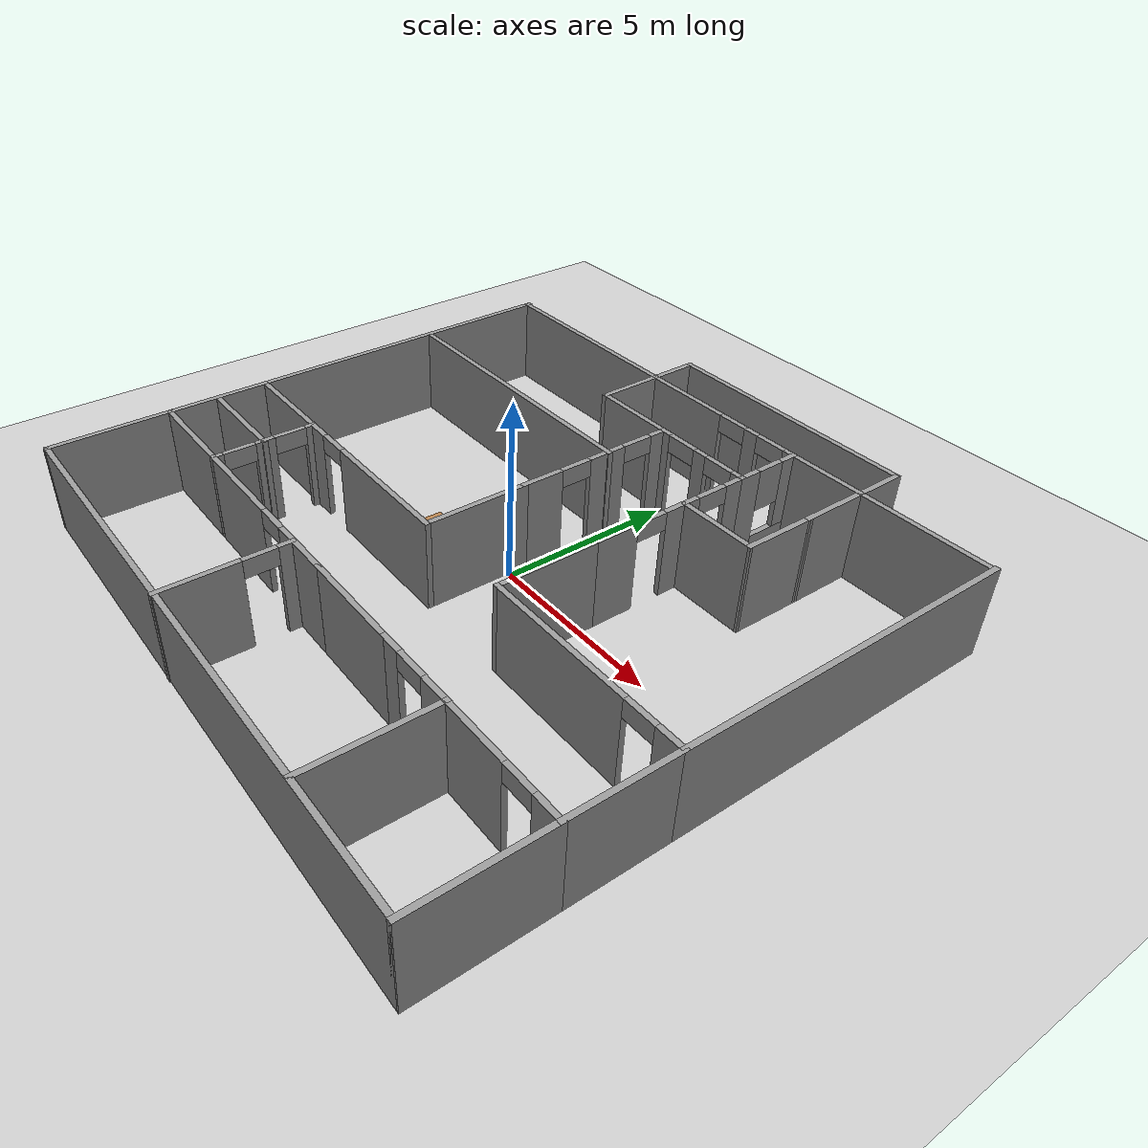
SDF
<sdf version="1.7">
 <world name="default">
  <model name="ground_plane">
   <static>1</static>
   <link name="link">
    <collision name="collision">
     <geometry><plane><normal>0 0 1</normal><size>100 100</size></plane></geometry>
     <surface><friction><ode><mu>100</mu><mu2>50</mu2></ode></friction></surface>
    </collision>
    <visual name="visual">
     <cast_shadows>0</cast_shadows>
     <geometry><plane><normal>0 0 1</normal><size>100 100</size></plane></geometry>
     <material>
      <script><uri>file://media/materials/scripts/gazebo.material</uri><name>Gazebo/Grey</name></script>
     </material>
    </visual>
   </link>
  </model>
  <model name="office">
   <pose>-0.02839 -0.13951 0 0 -0 0</pose>
   <link name="Wall_100">
    <collision name="Wall_100_Collision">
     <geometry><box><size>3 0.15 2.5</size></box></geometry>
     <pose>0 0 1.25 0 -0 0</pose>
    </collision>
    <visual name="Wall_100_Visual">
     <pose>0 0 1.25 0 -0 0</pose>
     <geometry><box><size>3 0.15 2.5</size></box></geometry>
     <material>
      <script><uri>file://media/materials/scripts/gazebo.material</uri><name>Gazebo/Grey</name></script>
      <ambient>1 1 1 1</ambient>
     </material>
     <meta><layer>0</layer></meta>
    </visual>
    <pose>-7.10827 -3.66762 0 0 -0 3.14159</pose>
   </link>
   <link name="Wall_11">
    <pose>2.725 2.93539 0 0 -0 1.5708</pose>
    <visual name="Wall_11_Visual_0">
     <pose>-1.77172 0 1.25 0 -0 0</pose>
     <geometry><box><size>1.20655 0.15 2.5</size></box></geometry>
     <material>
      <script><uri>file://media/materials/scripts/gazebo.material</uri><name>Gazebo/Grey</name></script>
      <ambient>1 1 1 1</ambient>
     </material>
     <meta><layer>0</layer></meta>
    </visual>
    <collision name="Wall_11_Collision_0">
     <geometry><box><size>1.20655 0.15 2.5</size></box></geometry>
     <pose>-1.77172 0 1.25 0 -0 0</pose>
    </collision>
    <visual name="Wall_11_Visual_1">
     <pose>0.268144 0 1.25 0 -0 0</pose>
     <geometry><box><size>1.07319 0.15 2.5</size></box></geometry>
     <material>
      <script><uri>file://media/materials/scripts/gazebo.material</uri><name>Gazebo/Grey</name></script>
      <ambient>1 1 1 1</ambient>
     </material>
     <meta><layer>0</layer></meta>
    </visual>
    <collision name="Wall_11_Collision_1">
     <geometry><box><size>1.07319 0.15 2.5</size></box></geometry>
     <pose>0.268144 0 1.25 0 -0 0</pose>
    </collision>
    <visual name="Wall_11_Visual_2">
     <pose>2.03987 0 1.25 0 -0 0</pose>
     <geometry><box><size>0.670261 0.15 2.5</size></box></geometry>
     <material>
      <script><uri>file://media/materials/scripts/gazebo.material</uri><name>Gazebo/Grey</name></script>
      <ambient>1 1 1 1</ambient>
     </material>
     <meta><layer>0</layer></meta>
    </visual>
    <collision name="Wall_11_Collision_2">
     <geometry><box><size>0.670261 0.15 2.5</size></box></geometry>
     <pose>2.03987 0 1.25 0 -0 0</pose>
    </collision>
    <visual name="Wall_11_Visual_3">
     <pose>-0.71845 0 2.25 0 -0 0</pose>
     <geometry><box><size>0.9 0.15 0.5</size></box></geometry>
     <material>
      <script><uri>file://media/materials/scripts/gazebo.material</uri><name>Gazebo/Grey</name></script>
      <ambient>1 1 1 1</ambient>
     </material>
     <meta><layer>0</layer></meta>
    </visual>
    <collision name="Wall_11_Collision_3">
     <geometry><box><size>0.9 0.15 0.5</size></box></geometry>
     <pose>-0.71845 0 2.25 0 -0 0</pose>
    </collision>
    <visual name="Wall_11_Visual_4">
     <pose>1.25474 0 2.25 0 -0 0</pose>
     <geometry><box><size>0.9 0.15 0.5</size></box></geometry>
     <material>
      <script><uri>file://media/materials/scripts/gazebo.material</uri><name>Gazebo/Grey</name></script>
      <ambient>1 1 1 1</ambient>
     </material>
     <meta><layer>0</layer></meta>
    </visual>
    <collision name="Wall_11_Collision_4">
     <geometry><box><size>0.9 0.15 0.5</size></box></geometry>
     <pose>1.25474 0 2.25 0 -0 0</pose>
    </collision>
   </link>
   <link name="Wall_12">
    <pose>1.3 5.23539 0 0 -0 3.14159</pose>
    <visual name="Wall_12_Visual_0">
     <pose>-1.3013 0 1.25 0 -0 0</pose>
     <geometry><box><size>0.397395 0.15 2.5</size></box></geometry>
     <material>
      <script><uri>file://media/materials/scripts/gazebo.material</uri><name>Gazebo/Grey</name></script>
      <ambient>1 1 1 1</ambient>
     </material>
     <meta><layer>0</layer></meta>
    </visual>
    <collision name="Wall_12_Collision_0">
     <geometry><box><size>0.397395 0.15 2.5</size></box></geometry>
     <pose>-1.3013 0 1.25 0 -0 0</pose>
    </collision>
    <visual name="Wall_12_Visual_1">
     <pose>0.006617 0 1.25 0 -0 0</pose>
     <geometry><box><size>0.418445 0.15 2.5</size></box></geometry>
     <material>
      <script><uri>file://media/materials/scripts/gazebo.material</uri><name>Gazebo/Grey</name></script>
      <ambient>1 1 1 1</ambient>
     </material>
     <meta><layer>0</layer></meta>
    </visual>
    <collision name="Wall_12_Collision_1">
     <geometry><box><size>0.418445 0.15 2.5</size></box></geometry>
     <pose>0.006617 0 1.25 0 -0 0</pose>
    </collision>
    <visual name="Wall_12_Visual_2">
     <pose>1.30792 0 1.25 0 -0 0</pose>
     <geometry><box><size>0.384161 0.15 2.5</size></box></geometry>
     <material>
      <script><uri>file://media/materials/scripts/gazebo.material</uri><name>Gazebo/Grey</name></script>
      <ambient>1 1 1 1</ambient>
     </material>
     <meta><layer>0</layer></meta>
    </visual>
    <collision name="Wall_12_Collision_2">
     <geometry><box><size>0.384161 0.15 2.5</size></box></geometry>
     <pose>1.30792 0 1.25 0 -0 0</pose>
    </collision>
    <visual name="Wall_12_Visual_3">
     <pose>-0.652605 0 2.25 0 -0 0</pose>
     <geometry><box><size>0.9 0.15 0.5</size></box></geometry>
     <material>
      <script><uri>file://media/materials/scripts/gazebo.material</uri><name>Gazebo/Grey</name></script>
      <ambient>1 1 1 1</ambient>
     </material>
     <meta><layer>0</layer></meta>
    </visual>
    <collision name="Wall_12_Collision_3">
     <geometry><box><size>0.9 0.15 0.5</size></box></geometry>
     <pose>-0.652605 0 2.25 0 -0 0</pose>
    </collision>
    <visual name="Wall_12_Visual_4">
     <pose>0.665839 0 2.25 0 -0 0</pose>
     <geometry><box><size>0.9 0.15 0.5</size></box></geometry>
     <material>
      <script><uri>file://media/materials/scripts/gazebo.material</uri><name>Gazebo/Grey</name></script>
      <ambient>1 1 1 1</ambient>
     </material>
     <meta><layer>0</layer></meta>
    </visual>
    <collision name="Wall_12_Collision_4">
     <geometry><box><size>0.9 0.15 0.5</size></box></geometry>
     <pose>0.665839 0 2.25 0 -0 0</pose>
    </collision>
   </link>
   <link name="Wall_13">
    <pose>-0.125 2.93539 0 0 -0 -1.5708</pose>
    <visual name="Wall_13_Visual_0">
     <pose>-2.08548 0 1.25 0 -0 0</pose>
     <geometry><box><size>0.579043 0.15 2.5</size></box></geometry>
     <material>
      <script><uri>file://media/materials/scripts/gazebo.material</uri><name>Gazebo/Grey</name></script>
      <ambient>1 1 1 1</ambient>
     </material>
     <meta><layer>0</layer></meta>
    </visual>
    <collision name="Wall_13_Collision_0">
     <geometry><box><size>0.579043 0.15 2.5</size></box></geometry>
     <pose>-2.08548 0 1.25 0 -0 0</pose>
    </collision>
    <visual name="Wall_13_Visual_1">
     <pose>-0.329311 0 1.25 0 -0 0</pose>
     <geometry><box><size>1.13329 0.15 2.5</size></box></geometry>
     <material>
      <script><uri>file://media/materials/scripts/gazebo.material</uri><name>Gazebo/Grey</name></script>
      <ambient>1 1 1 1</ambient>
     </material>
     <meta><layer>0</layer></meta>
    </visual>
    <collision name="Wall_13_Collision_1">
     <geometry><box><size>1.13329 0.15 2.5</size></box></geometry>
     <pose>-0.329311 0 1.25 0 -0 0</pose>
    </collision>
    <visual name="Wall_13_Visual_2">
     <pose>1.75617 0 1.25 0 -0 0</pose>
     <geometry><box><size>1.23766 0.15 2.5</size></box></geometry>
     <material>
      <script><uri>file://media/materials/scripts/gazebo.material</uri><name>Gazebo/Grey</name></script>
      <ambient>1 1 1 1</ambient>
     </material>
     <meta><layer>0</layer></meta>
    </visual>
    <collision name="Wall_13_Collision_2">
     <geometry><box><size>1.23766 0.15 2.5</size></box></geometry>
     <pose>1.75617 0 1.25 0 -0 0</pose>
    </collision>
    <visual name="Wall_13_Visual_3">
     <pose>-1.34596 0 2.25 0 -0 0</pose>
     <geometry><box><size>0.9 0.15 0.5</size></box></geometry>
     <material>
      <script><uri>file://media/materials/scripts/gazebo.material</uri><name>Gazebo/Grey</name></script>
      <ambient>1 1 1 1</ambient>
     </material>
     <meta><layer>0</layer></meta>
    </visual>
    <collision name="Wall_13_Collision_3">
     <geometry><box><size>0.9 0.15 0.5</size></box></geometry>
     <pose>-1.34596 0 2.25 0 -0 0</pose>
    </collision>
    <visual name="Wall_13_Visual_4">
     <pose>0.687336 0 2.25 0 -0 0</pose>
     <geometry><box><size>0.9 0.15 0.5</size></box></geometry>
     <material>
      <script><uri>file://media/materials/scripts/gazebo.material</uri><name>Gazebo/Grey</name></script>
      <ambient>1 1 1 1</ambient>
     </material>
     <meta><layer>0</layer></meta>
    </visual>
    <collision name="Wall_13_Collision_4">
     <geometry><box><size>0.9 0.15 0.5</size></box></geometry>
     <pose>0.687336 0 2.25 0 -0 0</pose>
    </collision>
   </link>
   <link name="Wall_15">
    <collision name="Wall_15_Collision">
     <geometry><box><size>2.5 0.15 2.5</size></box></geometry>
     <pose>0 0 1.25 0 -0 0</pose>
    </collision>
    <visual name="Wall_15_Visual">
     <pose>0 0 1.25 0 -0 0</pose>
     <geometry><box><size>2.5 0.15 2.5</size></box></geometry>
     <material>
      <script><uri>file://media/materials/scripts/gazebo.material</uri><name>Gazebo/Grey</name></script>
      <ambient>1 1 1 1</ambient>
     </material>
     <meta><layer>0</layer></meta>
    </visual>
    <pose>-1.3 5.23539 0 0 -0 3.14159</pose>
   </link>
   <link name="Wall_25">
    <collision name="Wall_25_Collision">
     <geometry><box><size>2 0.15 2.5</size></box></geometry>
     <pose>0 0 1.25 0 -0 0</pose>
    </collision>
    <visual name="Wall_25_Visual">
     <pose>0 0 1.25 0 -0 0</pose>
     <geometry><box><size>2 0.15 2.5</size></box></geometry>
     <material>
      <script><uri>file://media/materials/scripts/gazebo.material</uri><name>Gazebo/Grey</name></script>
      <ambient>1 1 1 1</ambient>
     </material>
     <meta><layer>0</layer></meta>
    </visual>
    <pose>-2.475 6.16039 0 0 -0 1.5708</pose>
   </link>
   <link name="Wall_26">
    <pose>1.2 7.08539 0 0 -0 0</pose>
    <visual name="Wall_26_Visual_0">
     <pose>-2.38462 0 1.25 0 -0 0</pose>
     <geometry><box><size>2.73077 0.15 2.5</size></box></geometry>
     <material>
      <script><uri>file://media/materials/scripts/gazebo.material</uri><name>Gazebo/Grey</name></script>
      <ambient>1 1 1 1</ambient>
     </material>
     <meta><layer>0</layer></meta>
    </visual>
    <collision name="Wall_26_Collision_0">
     <geometry><box><size>2.73077 0.15 2.5</size></box></geometry>
     <pose>-2.38462 0 1.25 0 -0 0</pose>
    </collision>
    <visual name="Wall_26_Visual_1">
     <pose>0.103755 0 1.25 0 -0 0</pose>
     <geometry><box><size>0.44597 0.15 2.5</size></box></geometry>
     <material>
      <script><uri>file://media/materials/scripts/gazebo.material</uri><name>Gazebo/Grey</name></script>
      <ambient>1 1 1 1</ambient>
     </material>
     <meta><layer>0</layer></meta>
    </visual>
    <collision name="Wall_26_Collision_1">
     <geometry><box><size>0.44597 0.15 2.5</size></box></geometry>
     <pose>0.103755 0 1.25 0 -0 0</pose>
    </collision>
    <visual name="Wall_26_Visual_2">
     <pose>2.48837 0 1.25 0 -0 0</pose>
     <geometry><box><size>2.52326 0.15 2.5</size></box></geometry>
     <material>
      <script><uri>file://media/materials/scripts/gazebo.material</uri><name>Gazebo/Grey</name></script>
      <ambient>1 1 1 1</ambient>
     </material>
     <meta><layer>0</layer></meta>
    </visual>
    <collision name="Wall_26_Collision_2">
     <geometry><box><size>2.52326 0.15 2.5</size></box></geometry>
     <pose>2.48837 0 1.25 0 -0 0</pose>
    </collision>
    <visual name="Wall_26_Visual_3">
     <pose>-0.56923 0 2.25 0 -0 0</pose>
     <geometry><box><size>0.9 0.15 0.5</size></box></geometry>
     <material>
      <script><uri>file://media/materials/scripts/gazebo.material</uri><name>Gazebo/Grey</name></script>
      <ambient>1 1 1 1</ambient>
     </material>
     <meta><layer>0</layer></meta>
    </visual>
    <collision name="Wall_26_Collision_3">
     <geometry><box><size>0.9 0.15 0.5</size></box></geometry>
     <pose>-0.56923 0 2.25 0 -0 0</pose>
    </collision>
    <visual name="Wall_26_Visual_4">
     <pose>0.77674 0 2.25 0 -0 0</pose>
     <geometry><box><size>0.9 0.15 0.5</size></box></geometry>
     <material>
      <script><uri>file://media/materials/scripts/gazebo.material</uri><name>Gazebo/Grey</name></script>
      <ambient>1 1 1 1</ambient>
     </material>
     <meta><layer>0</layer></meta>
    </visual>
    <collision name="Wall_26_Collision_4">
     <geometry><box><size>0.9 0.15 0.5</size></box></geometry>
     <pose>0.77674 0 2.25 0 -0 0</pose>
    </collision>
   </link>
   <link name="Wall_27">
    <collision name="Wall_27_Collision">
     <geometry><box><size>2 0.15 2.5</size></box></geometry>
     <pose>0 0 1.25 0 -0 0</pose>
    </collision>
    <visual name="Wall_27_Visual">
     <pose>0 0 1.25 0 -0 0</pose>
     <geometry><box><size>2 0.15 2.5</size></box></geometry>
     <material>
      <script><uri>file://media/materials/scripts/gazebo.material</uri><name>Gazebo/Grey</name></script>
      <ambient>1 1 1 1</ambient>
     </material>
     <meta><layer>0</layer></meta>
    </visual>
    <pose>4.875 6.16039 0 0 -0 -1.5708</pose>
   </link>
   <link name="Wall_29">
    <collision name="Wall_29_Collision">
     <geometry><box><size>1.5 0.15 2.5</size></box></geometry>
     <pose>0 0 1.25 0 -0 0</pose>
    </collision>
    <visual name="Wall_29_Visual">
     <pose>0 0 1.25 0 -0 0</pose>
     <geometry><box><size>1.5 0.15 2.5</size></box></geometry>
     <material>
      <script><uri>file://media/materials/scripts/gazebo.material</uri><name>Gazebo/Grey</name></script>
      <ambient>1 1 1 1</ambient>
     </material>
     <meta><layer>0</layer></meta>
    </visual>
    <pose>-2.475 7.76039 0 0 -0 1.5708</pose>
   </link>
   <link name="Wall_30">
    <collision name="Wall_30_Collision">
     <geometry><box><size>7.5 0.15 2.5</size></box></geometry>
     <pose>0 0 1.25 0 -0 0</pose>
    </collision>
    <visual name="Wall_30_Visual">
     <pose>0 0 1.25 0 -0 0</pose>
     <geometry><box><size>7.5 0.15 2.5</size></box></geometry>
     <material>
      <script><uri>file://media/materials/scripts/gazebo.material</uri><name>Gazebo/Grey</name></script>
      <ambient>1 1 1 1</ambient>
     </material>
     <meta><layer>0</layer></meta>
    </visual>
    <pose>1.2 8.43539 0 0 -0 0</pose>
   </link>
   <link name="Wall_31">
    <collision name="Wall_31_Collision">
     <geometry><box><size>1.5 0.15 2.5</size></box></geometry>
     <pose>0 0 1.25 0 -0 0</pose>
    </collision>
    <visual name="Wall_31_Visual">
     <pose>0 0 1.25 0 -0 0</pose>
     <geometry><box><size>1.5 0.15 2.5</size></box></geometry>
     <material>
      <script><uri>file://media/materials/scripts/gazebo.material</uri><name>Gazebo/Grey</name></script>
      <ambient>1 1 1 1</ambient>
     </material>
     <meta><layer>0</layer></meta>
    </visual>
    <pose>4.875 7.76039 0 0 -0 -1.5708</pose>
   </link>
   <link name="Wall_35">
    <pose>2.725 6.16039 0 0 -0 1.5708</pose>
    <visual name="Wall_35_Visual_0">
     <pose>-0.673622 0 1.25 0 -0 0</pose>
     <geometry><box><size>0.652756 0.15 2.5</size></box></geometry>
     <material>
      <script><uri>file://media/materials/scripts/gazebo.material</uri><name>Gazebo/Grey</name></script>
      <ambient>1 1 1 1</ambient>
     </material>
     <meta><layer>0</layer></meta>
    </visual>
    <collision name="Wall_35_Collision_0">
     <geometry><box><size>0.652756 0.15 2.5</size></box></geometry>
     <pose>-0.673622 0 1.25 0 -0 0</pose>
    </collision>
    <visual name="Wall_35_Visual_1">
     <pose>0.326378 0 0.25 0 -0 0</pose>
     <geometry><box><size>1.34724 0.15 0.5</size></box></geometry>
     <material>
      <script><uri>file://media/materials/scripts/gazebo.material</uri><name>Gazebo/Grey</name></script>
      <ambient>1 1 1 1</ambient>
     </material>
     <meta><layer>0</layer></meta>
    </visual>
    <collision name="Wall_35_Collision_1">
     <geometry><box><size>1.34724 0.15 0.5</size></box></geometry>
     <pose>0.326378 0 0.25 0 -0 0</pose>
    </collision>
    <visual name="Wall_35_Visual_2">
     <pose>0.726378 0 1.5 0 -0 0</pose>
     <geometry><box><size>0.547244 0.15 2</size></box></geometry>
     <material>
      <script><uri>file://media/materials/scripts/gazebo.material</uri><name>Gazebo/Grey</name></script>
      <ambient>1 1 1 1</ambient>
     </material>
     <meta><layer>0</layer></meta>
    </visual>
    <collision name="Wall_35_Collision_2">
     <geometry><box><size>0.547244 0.15 2</size></box></geometry>
     <pose>0.726378 0 1.5 0 -0 0</pose>
    </collision>
    <visual name="Wall_35_Visual_3">
     <pose>0.052756 0 1.9 0 -0 0</pose>
     <geometry><box><size>0.8 0.15 1.2</size></box></geometry>
     <material>
      <script><uri>file://media/materials/scripts/gazebo.material</uri><name>Gazebo/Grey</name></script>
      <ambient>1 1 1 1</ambient>
     </material>
     <meta><layer>0</layer></meta>
    </visual>
    <collision name="Wall_35_Collision_3">
     <geometry><box><size>0.8 0.15 1.2</size></box></geometry>
     <pose>0.052756 0 1.9 0 -0 0</pose>
    </collision>
   </link>
   <link name="Wall_38">
    <collision name="Wall_38_Collision">
     <geometry><box><size>3 0.15 2.5</size></box></geometry>
     <pose>0 0 1.25 0 -0 0</pose>
    </collision>
    <visual name="Wall_38_Visual">
     <pose>0 0 1.25 0 -0 0</pose>
     <geometry><box><size>3 0.15 2.5</size></box></geometry>
     <material>
      <script><uri>file://media/materials/scripts/gazebo.material</uri><name>Gazebo/Grey</name></script>
      <ambient>1 1 1 1</ambient>
     </material>
     <meta><layer>0</layer></meta>
    </visual>
    <pose>-0.125 -0.789611 0 0 -0 -1.5708</pose>
   </link>
   <link name="Wall_40">
    <collision name="Wall_40_Collision">
     <geometry><box><size>3 0.15 2.5</size></box></geometry>
     <pose>0 0 1.25 0 -0 0</pose>
    </collision>
    <visual name="Wall_40_Visual">
     <pose>0 0 1.25 0 -0 0</pose>
     <geometry><box><size>3 0.15 2.5</size></box></geometry>
     <material>
      <script><uri>file://media/materials/scripts/gazebo.material</uri><name>Gazebo/Grey</name></script>
      <ambient>1 1 1 1</ambient>
     </material>
     <meta><layer>0</layer></meta>
    </visual>
    <pose>2.725 -0.789611 0 0 -0 1.5708</pose>
   </link>
   <link name="Wall_43">
    <collision name="Wall_43_Collision">
     <geometry><box><size>3 0.15 2.5</size></box></geometry>
     <pose>0 0 1.25 0 -0 0</pose>
    </collision>
    <visual name="Wall_43_Visual">
     <pose>0 0 1.25 0 -0 0</pose>
     <geometry><box><size>3 0.15 2.5</size></box></geometry>
     <material>
      <script><uri>file://media/materials/scripts/gazebo.material</uri><name>Gazebo/Grey</name></script>
      <ambient>1 1 1 1</ambient>
     </material>
     <meta><layer>0</layer></meta>
    </visual>
    <pose>1.3 -5.06461 0 0 -0 0</pose>
   </link>
   <link name="Wall_45">
    <pose>5.65 -2.21461 0 0 -0 0</pose>
    <visual name="Wall_45_Visual_0">
     <pose>-0.855194 0 1.25 0 -0 0</pose>
     <geometry><box><size>4.28961 0.15 2.5</size></box></geometry>
     <material>
      <script><uri>file://media/materials/scripts/gazebo.material</uri><name>Gazebo/Grey</name></script>
      <ambient>1 1 1 1</ambient>
     </material>
     <meta><layer>0</layer></meta>
    </visual>
    <collision name="Wall_45_Collision_0">
     <geometry><box><size>4.28961 0.15 2.5</size></box></geometry>
     <pose>-0.855194 0 1.25 0 -0 0</pose>
    </collision>
    <visual name="Wall_45_Visual_1">
     <pose>2.59481 0 1.25 0 -0 0</pose>
     <geometry><box><size>0.810387 0.15 2.5</size></box></geometry>
     <material>
      <script><uri>file://media/materials/scripts/gazebo.material</uri><name>Gazebo/Grey</name></script>
      <ambient>1 1 1 1</ambient>
     </material>
     <meta><layer>0</layer></meta>
    </visual>
    <collision name="Wall_45_Collision_1">
     <geometry><box><size>0.810387 0.15 2.5</size></box></geometry>
     <pose>2.59481 0 1.25 0 -0 0</pose>
    </collision>
    <visual name="Wall_45_Visual_2">
     <pose>1.73961 0 2.25 0 -0 0</pose>
     <geometry><box><size>0.9 0.15 0.5</size></box></geometry>
     <material>
      <script><uri>file://media/materials/scripts/gazebo.material</uri><name>Gazebo/Grey</name></script>
      <ambient>1 1 1 1</ambient>
     </material>
     <meta><layer>0</layer></meta>
    </visual>
    <collision name="Wall_45_Collision_2">
     <geometry><box><size>0.9 0.15 0.5</size></box></geometry>
     <pose>1.73961 0 2.25 0 -0 0</pose>
    </collision>
   </link>
   <link name="Wall_46">
    <collision name="Wall_46_Collision">
     <geometry><box><size>3 0.15 2.5</size></box></geometry>
     <pose>0 0 1.25 0 -0 0</pose>
    </collision>
    <visual name="Wall_46_Visual">
     <pose>0 0 1.25 0 -0 0</pose>
     <geometry><box><size>3 0.15 2.5</size></box></geometry>
     <material>
      <script><uri>file://media/materials/scripts/gazebo.material</uri><name>Gazebo/Grey</name></script>
      <ambient>1 1 1 1</ambient>
     </material>
     <meta><layer>0</layer></meta>
    </visual>
    <pose>8.575 -3.63961 0 0 -0 -1.5708</pose>
   </link>
   <link name="Wall_47">
    <pose>5.65 -5.06461 0 0 -0 3.14159</pose>
    <visual name="Wall_47_Visual_0">
     <pose>-2.58723 0 1.25 0 -0 0</pose>
     <geometry><box><size>0.825548 0.15 2.5</size></box></geometry>
     <material>
      <script><uri>file://media/materials/scripts/gazebo.material</uri><name>Gazebo/Grey</name></script>
      <ambient>1 1 1 1</ambient>
     </material>
     <meta><layer>0</layer></meta>
    </visual>
    <collision name="Wall_47_Collision_0">
     <geometry><box><size>0.825548 0.15 2.5</size></box></geometry>
     <pose>-2.58723 0 1.25 0 -0 0</pose>
    </collision>
    <visual name="Wall_47_Visual_1">
     <pose>0.08609 0 1.25 0 -0 0</pose>
     <geometry><box><size>2.72108 0.15 2.5</size></box></geometry>
     <material>
      <script><uri>file://media/materials/scripts/gazebo.material</uri><name>Gazebo/Grey</name></script>
      <ambient>1 1 1 1</ambient>
     </material>
     <meta><layer>0</layer></meta>
    </visual>
    <collision name="Wall_47_Collision_1">
     <geometry><box><size>2.72108 0.15 2.5</size></box></geometry>
     <pose>0.08609 0 1.25 0 -0 0</pose>
    </collision>
    <visual name="Wall_47_Visual_2">
     <pose>2.67332 0 1.25 0 -0 0</pose>
     <geometry><box><size>0.653368 0.15 2.5</size></box></geometry>
     <material>
      <script><uri>file://media/materials/scripts/gazebo.material</uri><name>Gazebo/Grey</name></script>
      <ambient>1 1 1 1</ambient>
     </material>
     <meta><layer>0</layer></meta>
    </visual>
    <collision name="Wall_47_Collision_2">
     <geometry><box><size>0.653368 0.15 2.5</size></box></geometry>
     <pose>2.67332 0 1.25 0 -0 0</pose>
    </collision>
    <visual name="Wall_47_Visual_3">
     <pose>-1.72445 0 2.25 0 -0 0</pose>
     <geometry><box><size>0.9 0.15 0.5</size></box></geometry>
     <material>
      <script><uri>file://media/materials/scripts/gazebo.material</uri><name>Gazebo/Grey</name></script>
      <ambient>1 1 1 1</ambient>
     </material>
     <meta><layer>0</layer></meta>
    </visual>
    <collision name="Wall_47_Collision_3">
     <geometry><box><size>0.9 0.15 0.5</size></box></geometry>
     <pose>-1.72445 0 2.25 0 -0 0</pose>
    </collision>
    <visual name="Wall_47_Visual_4">
     <pose>1.89663 0 2.25 0 -0 0</pose>
     <geometry><box><size>0.9 0.15 0.5</size></box></geometry>
     <material>
      <script><uri>file://media/materials/scripts/gazebo.material</uri><name>Gazebo/Grey</name></script>
      <ambient>1 1 1 1</ambient>
     </material>
     <meta><layer>0</layer></meta>
    </visual>
    <collision name="Wall_47_Collision_4">
     <geometry><box><size>0.9 0.15 0.5</size></box></geometry>
     <pose>1.89663 0 2.25 0 -0 0</pose>
    </collision>
   </link>
   <link name="Wall_49">
    <pose>-2.925 -2.21461 0 0 -0 3.14159</pose>
    <visual name="Wall_49_Visual_0">
     <pose>-0.830299 0 1.25 0 -0 0</pose>
     <geometry><box><size>4.0894 0.15 2.5</size></box></geometry>
     <material>
      <script><uri>file://media/materials/scripts/gazebo.material</uri><name>Gazebo/Grey</name></script>
      <ambient>1 1 1 1</ambient>
     </material>
     <meta><layer>0</layer></meta>
    </visual>
    <collision name="Wall_49_Collision_0">
     <geometry><box><size>4.0894 0.15 2.5</size></box></geometry>
     <pose>-0.830299 0 1.25 0 -0 0</pose>
    </collision>
    <visual name="Wall_49_Visual_1">
     <pose>2.4947 0 1.25 0 -0 0</pose>
     <geometry><box><size>0.760599 0.15 2.5</size></box></geometry>
     <material>
      <script><uri>file://media/materials/scripts/gazebo.material</uri><name>Gazebo/Grey</name></script>
      <ambient>1 1 1 1</ambient>
     </material>
     <meta><layer>0</layer></meta>
    </visual>
    <collision name="Wall_49_Collision_1">
     <geometry><box><size>0.760599 0.15 2.5</size></box></geometry>
     <pose>2.4947 0 1.25 0 -0 0</pose>
    </collision>
    <visual name="Wall_49_Visual_2">
     <pose>1.6644 0 2.25 0 -0 0</pose>
     <geometry><box><size>0.9 0.15 0.5</size></box></geometry>
     <material>
      <script><uri>file://media/materials/scripts/gazebo.material</uri><name>Gazebo/Grey</name></script>
      <ambient>1 1 1 1</ambient>
     </material>
     <meta><layer>0</layer></meta>
    </visual>
    <collision name="Wall_49_Collision_2">
     <geometry><box><size>0.9 0.15 0.5</size></box></geometry>
     <pose>1.6644 0 2.25 0 -0 0</pose>
    </collision>
   </link>
   <link name="Wall_52">
    <pose>-2.925 -5.06461 0 0 -0 3.14159</pose>
    <visual name="Wall_52_Visual_0">
     <pose>-1.93486 0 1.25 0 -0 0</pose>
     <geometry><box><size>1.88028 0.15 2.5</size></box></geometry>
     <material>
      <script><uri>file://media/materials/scripts/gazebo.material</uri><name>Gazebo/Grey</name></script>
      <ambient>1 1 1 1</ambient>
     </material>
     <meta><layer>0</layer></meta>
    </visual>
    <collision name="Wall_52_Collision_0">
     <geometry><box><size>1.88028 0.15 2.5</size></box></geometry>
     <pose>-1.93486 0 1.25 0 -0 0</pose>
    </collision>
    <visual name="Wall_52_Visual_1">
     <pose>1.39014 0 1.25 0 -0 0</pose>
     <geometry><box><size>2.96972 0.15 2.5</size></box></geometry>
     <material>
      <script><uri>file://media/materials/scripts/gazebo.material</uri><name>Gazebo/Grey</name></script>
      <ambient>1 1 1 1</ambient>
     </material>
     <meta><layer>0</layer></meta>
    </visual>
    <collision name="Wall_52_Collision_1">
     <geometry><box><size>2.96972 0.15 2.5</size></box></geometry>
     <pose>1.39014 0 1.25 0 -0 0</pose>
    </collision>
    <visual name="Wall_52_Visual_2">
     <pose>-0.544716 0 2.25 0 -0 0</pose>
     <geometry><box><size>0.9 0.15 0.5</size></box></geometry>
     <material>
      <script><uri>file://media/materials/scripts/gazebo.material</uri><name>Gazebo/Grey</name></script>
      <ambient>1 1 1 1</ambient>
     </material>
     <meta><layer>0</layer></meta>
    </visual>
    <collision name="Wall_52_Collision_2">
     <geometry><box><size>0.9 0.15 0.5</size></box></geometry>
     <pose>-0.544716 0 2.25 0 -0 0</pose>
    </collision>
   </link>
   <link name="Wall_53">
    <pose>-5.725 -3.63961 0 0 -0 1.5708</pose>
    <visual name="Wall_53_Visual_0">
     <pose>-1.33679 0 1.25 0 -0 0</pose>
     <geometry><box><size>0.326418 0.15 2.5</size></box></geometry>
     <material>
      <script><uri>file://media/materials/scripts/gazebo.material</uri><name>Gazebo/Grey</name></script>
      <ambient>1 1 1 1</ambient>
     </material>
     <meta><layer>0</layer></meta>
    </visual>
    <collision name="Wall_53_Collision_0">
     <geometry><box><size>0.326418 0.15 2.5</size></box></geometry>
     <pose>-1.33679 0 1.25 0 -0 0</pose>
    </collision>
    <visual name="Wall_53_Visual_1">
     <pose>0.002683 0 1.25 0 -0 0</pose>
     <geometry><box><size>0.55253 0.15 2.5</size></box></geometry>
     <material>
      <script><uri>file://media/materials/scripts/gazebo.material</uri><name>Gazebo/Grey</name></script>
      <ambient>1 1 1 1</ambient>
     </material>
     <meta><layer>0</layer></meta>
    </visual>
    <collision name="Wall_53_Collision_1">
     <geometry><box><size>0.55253 0.15 2.5</size></box></geometry>
     <pose>0.002683 0 1.25 0 -0 0</pose>
    </collision>
    <visual name="Wall_53_Visual_2">
     <pose>1.33947 0 1.25 0 -0 0</pose>
     <geometry><box><size>0.321051 0.15 2.5</size></box></geometry>
     <material>
      <script><uri>file://media/materials/scripts/gazebo.material</uri><name>Gazebo/Grey</name></script>
      <ambient>1 1 1 1</ambient>
     </material>
     <meta><layer>0</layer></meta>
    </visual>
    <collision name="Wall_53_Collision_2">
     <geometry><box><size>0.321051 0.15 2.5</size></box></geometry>
     <pose>1.33947 0 1.25 0 -0 0</pose>
    </collision>
    <visual name="Wall_53_Visual_3">
     <pose>-0.723582 0 2.25 0 -0 0</pose>
     <geometry><box><size>0.9 0.15 0.5</size></box></geometry>
     <material>
      <script><uri>file://media/materials/scripts/gazebo.material</uri><name>Gazebo/Grey</name></script>
      <ambient>1 1 1 1</ambient>
     </material>
     <meta><layer>0</layer></meta>
    </visual>
    <collision name="Wall_53_Collision_3">
     <geometry><box><size>0.9 0.15 0.5</size></box></geometry>
     <pose>-0.723582 0 2.25 0 -0 0</pose>
    </collision>
    <visual name="Wall_53_Visual_4">
     <pose>0.728949 0 2.25 0 -0 0</pose>
     <geometry><box><size>0.9 0.15 0.5</size></box></geometry>
     <material>
      <script><uri>file://media/materials/scripts/gazebo.material</uri><name>Gazebo/Grey</name></script>
      <ambient>1 1 1 1</ambient>
     </material>
     <meta><layer>0</layer></meta>
    </visual>
    <collision name="Wall_53_Collision_4">
     <geometry><box><size>0.9 0.15 0.5</size></box></geometry>
     <pose>0.728949 0 2.25 0 -0 0</pose>
    </collision>
   </link>
   <link name="Wall_58">
    <collision name="Wall_58_Collision">
     <geometry><box><size>2.25 0.15 2.5</size></box></geometry>
     <pose>0 0 1.25 0 -0 0</pose>
    </collision>
    <visual name="Wall_58_Visual">
     <pose>0 0 1.25 0 -0 0</pose>
     <geometry><box><size>2.25 0.15 2.5</size></box></geometry>
     <material>
      <script><uri>file://media/materials/scripts/gazebo.material</uri><name>Gazebo/Grey</name></script>
      <ambient>1 1 1 1</ambient>
     </material>
     <meta><layer>0</layer></meta>
    </visual>
    <pose>3.81519 3.30301 0 0 -0 0</pose>
   </link>
   <link name="Wall_59">
    <collision name="Wall_59_Collision">
     <geometry><box><size>2.0824 0.15 2.5</size></box></geometry>
     <pose>0 0 1.25 0 -0 0</pose>
    </collision>
    <visual name="Wall_59_Visual">
     <pose>0 0 1.25 0 -0 0</pose>
     <geometry><box><size>2.0824 0.15 2.5</size></box></geometry>
     <material>
      <script><uri>file://media/materials/scripts/gazebo.material</uri><name>Gazebo/Grey</name></script>
      <ambient>1 1 1 1</ambient>
     </material>
     <meta><layer>0</layer></meta>
    </visual>
    <pose>4.8701 4.2692 0 0 -0 1.56572</pose>
   </link>
   <link name="Wall_69">
    <collision name="Wall_69_Collision">
     <geometry><box><size>3.75 0.15 2.5</size></box></geometry>
     <pose>0 0 1.25 0 -0 0</pose>
    </collision>
    <visual name="Wall_69_Visual">
     <pose>0 0 1.25 0 -0 0</pose>
     <geometry><box><size>3.75 0.15 2.5</size></box></geometry>
     <material>
      <script><uri>file://media/materials/scripts/gazebo.material</uri><name>Gazebo/Grey</name></script>
      <ambient>1 1 1 1</ambient>
     </material>
     <meta><layer>0</layer></meta>
    </visual>
    <pose>6.675 7.08539 0 0 -0 0</pose>
   </link>
   <link name="Wall_71">
    <collision name="Wall_71_Collision">
     <geometry><box><size>9.5 0.15 2.5</size></box></geometry>
     <pose>0 0 1.25 0 -0 0</pose>
    </collision>
    <visual name="Wall_71_Visual">
     <pose>0 0 1.25 0 -0 0</pose>
     <geometry><box><size>9.5 0.15 2.5</size></box></geometry>
     <material>
      <script><uri>file://media/materials/scripts/gazebo.material</uri><name>Gazebo/Grey</name></script>
      <ambient>1 1 1 1</ambient>
     </material>
     <meta><layer>0</layer></meta>
    </visual>
    <pose>8.575 2.46039 0 0 -0 1.5708</pose>
   </link>
   <link name="Wall_73">
    <collision name="Wall_73_Collision">
     <geometry><box><size>3.5 0.15 2.5</size></box></geometry>
     <pose>0 0 1.25 0 -0 0</pose>
    </collision>
    <visual name="Wall_73_Visual">
     <pose>0 0 1.25 0 -0 0</pose>
     <geometry><box><size>3.5 0.15 2.5</size></box></geometry>
     <material>
      <script><uri>file://media/materials/scripts/gazebo.material</uri><name>Gazebo/Grey</name></script>
      <ambient>1 1 1 1</ambient>
     </material>
     <meta><layer>0</layer></meta>
    </visual>
    <pose>8.575 -6.73961 0 0 -0 -1.5708</pose>
   </link>
   <link name="Wall_79">
    <collision name="Wall_79_Collision">
     <geometry><box><size>3 0.15 2.5</size></box></geometry>
     <pose>0 0 1.25 0 -0 0</pose>
    </collision>
    <visual name="Wall_79_Visual">
     <pose>0 0 1.25 0 -0 0</pose>
     <geometry><box><size>3 0.15 2.5</size></box></geometry>
     <material>
      <script><uri>file://media/materials/scripts/gazebo.material</uri><name>Gazebo/Grey</name></script>
      <ambient>1 1 1 1</ambient>
     </material>
     <meta><layer>0</layer></meta>
    </visual>
    <pose>-7.15 -2.21461 0 0 -0 3.14159</pose>
   </link>
   <link name="Wall_80">
    <collision name="Wall_80_Collision">
     <geometry><box><size>3 0.15 2.5</size></box></geometry>
     <pose>0 0 1.25 0 -0 0</pose>
    </collision>
    <visual name="Wall_80_Visual">
     <pose>0 0 1.25 0 -0 0</pose>
     <geometry><box><size>3 0.15 2.5</size></box></geometry>
     <material>
      <script><uri>file://media/materials/scripts/gazebo.material</uri><name>Gazebo/Grey</name></script>
      <ambient>1 1 1 1</ambient>
     </material>
     <meta><layer>0</layer></meta>
    </visual>
    <pose>-8.575 -3.63961 0 0 -0 -1.5708</pose>
   </link>
   <link name="Wall_83">
    <collision name="Wall_83_Collision">
     <geometry><box><size>3.5 0.15 2.5</size></box></geometry>
     <pose>0 0 1.25 0 -0 0</pose>
    </collision>
    <visual name="Wall_83_Visual">
     <pose>0 0 1.25 0 -0 0</pose>
     <geometry><box><size>3.5 0.15 2.5</size></box></geometry>
     <material>
      <script><uri>file://media/materials/scripts/gazebo.material</uri><name>Gazebo/Grey</name></script>
      <ambient>1 1 1 1</ambient>
     </material>
     <meta><layer>0</layer></meta>
    </visual>
    <pose>-8.575 -6.73961 0 0 -0 -1.5708</pose>
   </link>
   <link name="Wall_84">
    <collision name="Wall_84_Collision">
     <geometry><box><size>17.25 0.15 2.5</size></box></geometry>
     <pose>0 0 1.25 0 -0 0</pose>
    </collision>
    <visual name="Wall_84_Visual">
     <pose>0 0 1.25 0 -0 0</pose>
     <geometry><box><size>17.25 0.15 2.5</size></box></geometry>
     <material>
      <script><uri>file://media/materials/scripts/gazebo.material</uri><name>Gazebo/Grey</name></script>
      <ambient>1 1 1 1</ambient>
     </material>
     <meta><layer>0</layer></meta>
    </visual>
    <pose>-0.025 -8.41461 0 0 -0 0</pose>
   </link>
   <link name="Wall_86">
    <collision name="Wall_86_Collision">
     <geometry><box><size>9.5 0.15 2.5</size></box></geometry>
     <pose>0 0 1.25 0 -0 0</pose>
    </collision>
    <visual name="Wall_86_Visual">
     <pose>0 0 1.25 0 -0 0</pose>
     <geometry><box><size>9.5 0.15 2.5</size></box></geometry>
     <material>
      <script><uri>file://media/materials/scripts/gazebo.material</uri><name>Gazebo/Grey</name></script>
      <ambient>1 1 1 1</ambient>
     </material>
     <meta><layer>0</layer></meta>
    </visual>
    <pose>-8.575 2.46039 0 0 -0 1.5708</pose>
   </link>
   <link name="Wall_89">
    <collision name="Wall_89_Collision">
     <geometry><box><size>6.25 0.15 2.5</size></box></geometry>
     <pose>0 0 1.25 0 -0 0</pose>
    </collision>
    <visual name="Wall_89_Visual">
     <pose>0 0 1.25 0 -0 0</pose>
     <geometry><box><size>6.25 0.15 2.5</size></box></geometry>
     <material>
      <script><uri>file://media/materials/scripts/gazebo.material</uri><name>Gazebo/Grey</name></script>
      <ambient>1 1 1 1</ambient>
     </material>
     <meta><layer>0</layer></meta>
    </visual>
    <pose>-5.525 7.08539 0 0 -0 3.14159</pose>
   </link>
   <link name="Wall_92">
    <collision name="Wall_92_Collision">
     <geometry><box><size>8.5 0.15 2.5</size></box></geometry>
     <pose>0 0 1.25 0 -0 0</pose>
    </collision>
    <visual name="Wall_92_Visual">
     <pose>0 0 1.25 0 -0 0</pose>
     <geometry><box><size>8.5 0.15 2.5</size></box></geometry>
     <material>
      <script><uri>file://media/materials/scripts/gazebo.material</uri><name>Gazebo/Grey</name></script>
      <ambient>1 1 1 1</ambient>
     </material>
     <meta><layer>0</layer></meta>
    </visual>
    <pose>-4.27127 3.31707 0 0 -0 3.14159</pose>
   </link>
   <link name="Wall_94">
    <collision name="Wall_94_Collision">
     <geometry><box><size>3.5 0.15 2.5</size></box></geometry>
     <pose>0 0 1.25 0 -0 0</pose>
    </collision>
    <visual name="Wall_94_Visual">
     <pose>0 0 1.25 0 -0 0</pose>
     <geometry><box><size>3.5 0.15 2.5</size></box></geometry>
     <material>
      <script><uri>file://media/materials/scripts/gazebo.material</uri><name>Gazebo/Grey</name></script>
      <ambient>1 1 1 1</ambient>
     </material>
     <meta><layer>0</layer></meta>
    </visual>
    <pose>5.03097 -6.73333 0 0 -0 -1.5708</pose>
   </link>
   <link name="Wall_96">
    <pose>-1.30012 -6.76039 0 0 -0 -1.5708</pose>
    <visual name="Wall_96_Visual_0">
     <pose>-1.51757 0 1.25 0 -0 0</pose>
     <geometry><box><size>0.464863 0.15 2.5</size></box></geometry>
     <material>
      <script><uri>file://media/materials/scripts/gazebo.material</uri><name>Gazebo/Grey</name></script>
      <ambient>1 1 1 1</ambient>
     </material>
     <meta><layer>0</layer></meta>
    </visual>
    <collision name="Wall_96_Collision_0">
     <geometry><box><size>0.464863 0.15 2.5</size></box></geometry>
     <pose>-1.51757 0 1.25 0 -0 0</pose>
    </collision>
    <visual name="Wall_96_Visual_1">
     <pose>0.682432 0 1.25 0 -0 0</pose>
     <geometry><box><size>2.13514 0.15 2.5</size></box></geometry>
     <material>
      <script><uri>file://media/materials/scripts/gazebo.material</uri><name>Gazebo/Grey</name></script>
      <ambient>1 1 1 1</ambient>
     </material>
     <meta><layer>0</layer></meta>
    </visual>
    <collision name="Wall_96_Collision_1">
     <geometry><box><size>2.13514 0.15 2.5</size></box></geometry>
     <pose>0.682432 0 1.25 0 -0 0</pose>
    </collision>
    <visual name="Wall_96_Visual_2">
     <pose>-0.835137 0 2.25 0 -0 0</pose>
     <geometry><box><size>0.9 0.15 0.5</size></box></geometry>
     <material>
      <script><uri>file://media/materials/scripts/gazebo.material</uri><name>Gazebo/Grey</name></script>
      <ambient>1 1 1 1</ambient>
     </material>
     <meta><layer>0</layer></meta>
    </visual>
    <collision name="Wall_96_Collision_2">
     <geometry><box><size>0.9 0.15 0.5</size></box></geometry>
     <pose>-0.835137 0 2.25 0 -0 0</pose>
    </collision>
   </link>
   <link name="Wall_98">
    <collision name="Wall_98_Collision">
     <geometry><box><size>3 0.15 2.5</size></box></geometry>
     <pose>0 0 1.25 0 -0 0</pose>
    </collision>
    <visual name="Wall_98_Visual">
     <pose>0 0 1.25 0 -0 0</pose>
     <geometry><box><size>3 0.15 2.5</size></box></geometry>
     <material>
      <script><uri>file://media/materials/scripts/gazebo.material</uri><name>Gazebo/Grey</name></script>
      <ambient>1 1 1 1</ambient>
     </material>
     <meta><layer>0</layer></meta>
    </visual>
    <pose>-7.15 -5.06461 0 0 -0 -3.14159</pose>
   </link>
   <static>1</static>
  </model>
  <model name="table_clone_clone_2">
   <static>1</static>
   <link name="link">
    <collision name="surface">
     <pose>0 0 1 0 -0 0</pose>
     <geometry><box><size>1.5 0.8 0.03</size></box></geometry>
     <surface><friction><ode><mu>0.6</mu><mu2>0.6</mu2></ode></friction></surface>
    </collision>
    <visual name="visual1">
     <pose>0 0 1 0 -0 0</pose>
     <geometry><box><size>1.5 0.8 0.03</size></box></geometry>
     <material>
      <script><uri>file://media/materials/scripts/gazebo.material</uri><name>Gazebo/Wood</name></script>
     </material>
    </visual>
    <collision name="front_left_leg">
     <pose>0.68 0.38 0.5 0 -0 0</pose>
     <geometry><cylinder><radius>0.02</radius><length>1</length></cylinder></geometry>
    </collision>
    <visual name="front_left_leg">
     <pose>0.68 0.38 0.5 0 -0 0</pose>
     <geometry><cylinder><radius>0.02</radius><length>1</length></cylinder></geometry>
     <material>
      <script><uri>file://media/materials/scripts/gazebo.material</uri><name>Gazebo/Grey</name></script>
     </material>
    </visual>
    <collision name="front_right_leg">
     <pose>0.68 -0.38 0.5 0 -0 0</pose>
     <geometry><cylinder><radius>0.02</radius><length>1</length></cylinder></geometry>
    </collision>
    <visual name="front_right_leg">
     <pose>0.68 -0.38 0.5 0 -0 0</pose>
     <geometry><cylinder><radius>0.02</radius><length>1</length></cylinder></geometry>
     <material>
      <script><uri>file://media/materials/scripts/gazebo.material</uri><name>Gazebo/Grey</name></script>
     </material>
    </visual>
    <collision name="back_right_leg">
     <pose>-0.68 -0.38 0.5 0 -0 0</pose>
     <geometry><cylinder><radius>0.02</radius><length>1</length></cylinder></geometry>
    </collision>
    <visual name="back_right_leg">
     <pose>-0.68 -0.38 0.5 0 -0 0</pose>
     <geometry><cylinder><radius>0.02</radius><length>1</length></cylinder></geometry>
     <material>
      <script><uri>file://media/materials/scripts/gazebo.material</uri><name>Gazebo/Grey</name></script>
     </material>
    </visual>
    <collision name="back_left_leg">
     <pose>-0.68 0.38 0.5 0 -0 0</pose>
     <geometry><cylinder><radius>0.02</radius><length>1</length></cylinder></geometry>
    </collision>
    <visual name="back_left_leg">
     <pose>-0.68 0.38 0.5 0 -0 0</pose>
     <geometry><cylinder><radius>0.02</radius><length>1</length></cylinder></geometry>
     <material>
      <script><uri>file://media/materials/scripts/gazebo.material</uri><name>Gazebo/Grey</name></script>
     </material>
    </visual>
   </link>
   <pose>-2.84735 -7.7148 0 0 0 -1.58514</pose>
  </model>
  <model name="table_clone_clone_0_clone_2">
   <static>1</static>
   <link name="link">
    <collision name="surface">
     <pose>0 0 1 0 -0 0</pose>
     <geometry><box><size>1.5 0.8 0.03</size></box></geometry>
     <surface><friction><ode><mu>0.6</mu><mu2>0.6</mu2></ode></friction></surface>
    </collision>
    <visual name="visual1">
     <pose>0 0 1 0 -0 0</pose>
     <geometry><box><size>1.5 0.8 0.03</size></box></geometry>
     <material>
      <script><uri>file://media/materials/scripts/gazebo.material</uri><name>Gazebo/Wood</name></script>
     </material>
    </visual>
    <collision name="front_left_leg">
     <pose>0.68 0.38 0.5 0 -0 0</pose>
     <geometry><cylinder><radius>0.02</radius><length>1</length></cylinder></geometry>
    </collision>
    <visual name="front_left_leg">
     <pose>0.68 0.38 0.5 0 -0 0</pose>
     <geometry><cylinder><radius>0.02</radius><length>1</length></cylinder></geometry>
     <material>
      <script><uri>file://media/materials/scripts/gazebo.material</uri><name>Gazebo/Grey</name></script>
     </material>
    </visual>
    <collision name="front_right_leg">
     <pose>0.68 -0.38 0.5 0 -0 0</pose>
     <geometry><cylinder><radius>0.02</radius><length>1</length></cylinder></geometry>
    </collision>
    <visual name="front_right_leg">
     <pose>0.68 -0.38 0.5 0 -0 0</pose>
     <geometry><cylinder><radius>0.02</radius><length>1</length></cylinder></geometry>
     <material>
      <script><uri>file://media/materials/scripts/gazebo.material</uri><name>Gazebo/Grey</name></script>
     </material>
    </visual>
    <collision name="back_right_leg">
     <pose>-0.68 -0.38 0.5 0 -0 0</pose>
     <geometry><cylinder><radius>0.02</radius><length>1</length></cylinder></geometry>
    </collision>
    <visual name="back_right_leg">
     <pose>-0.68 -0.38 0.5 0 -0 0</pose>
     <geometry><cylinder><radius>0.02</radius><length>1</length></cylinder></geometry>
     <material>
      <script><uri>file://media/materials/scripts/gazebo.material</uri><name>Gazebo/Grey</name></script>
     </material>
    </visual>
    <collision name="back_left_leg">
     <pose>-0.68 0.38 0.5 0 -0 0</pose>
     <geometry><cylinder><radius>0.02</radius><length>1</length></cylinder></geometry>
    </collision>
    <visual name="back_left_leg">
     <pose>-0.68 0.38 0.5 0 -0 0</pose>
     <geometry><cylinder><radius>0.02</radius><length>1</length></cylinder></geometry>
     <material>
      <script><uri>file://media/materials/scripts/gazebo.material</uri><name>Gazebo/Grey</name></script>
     </material>
    </visual>
   </link>
   <pose>-1.78224 -1.43572 0 0 0 -1.58514</pose>
  </model>
 </world>
</sdf>
